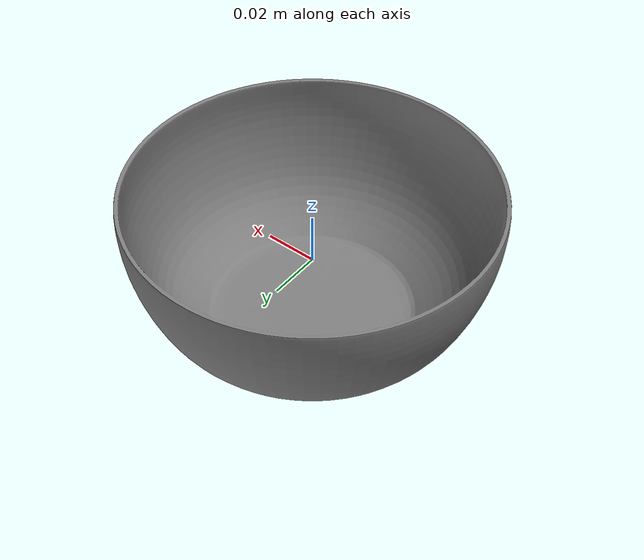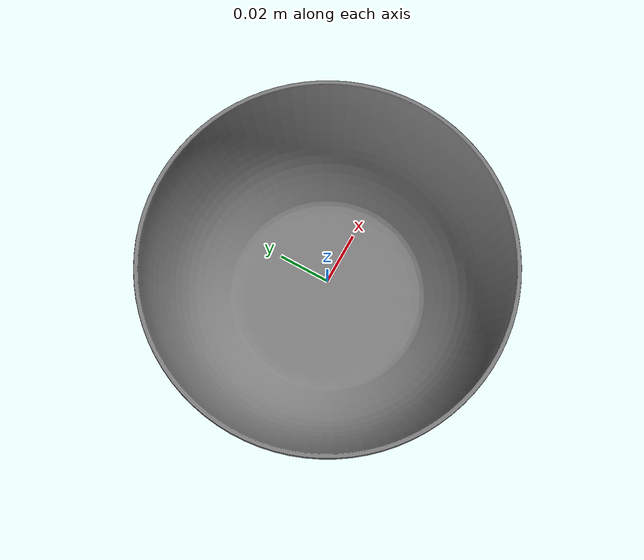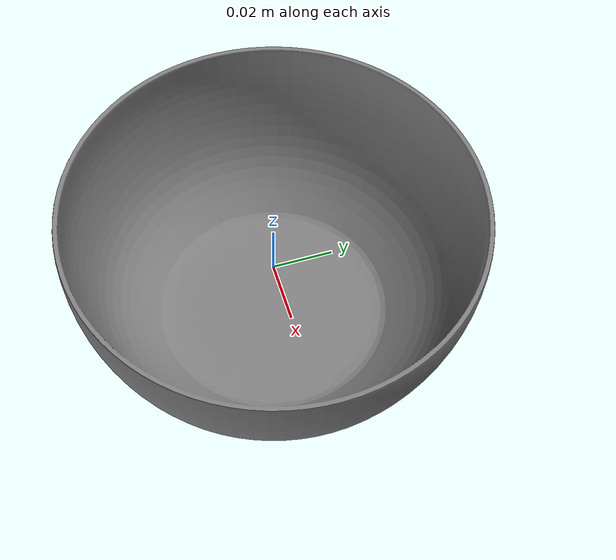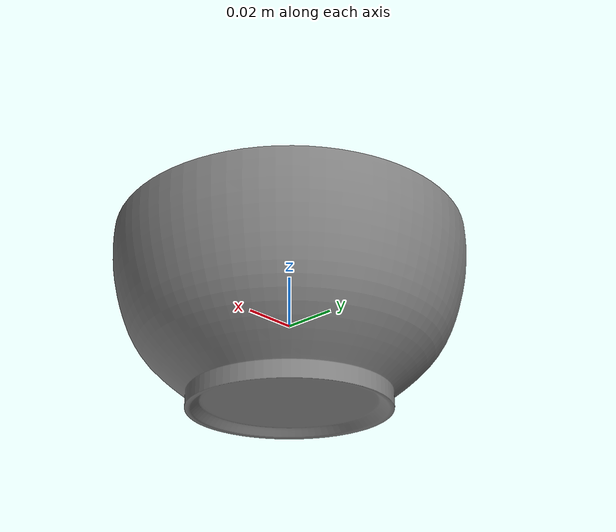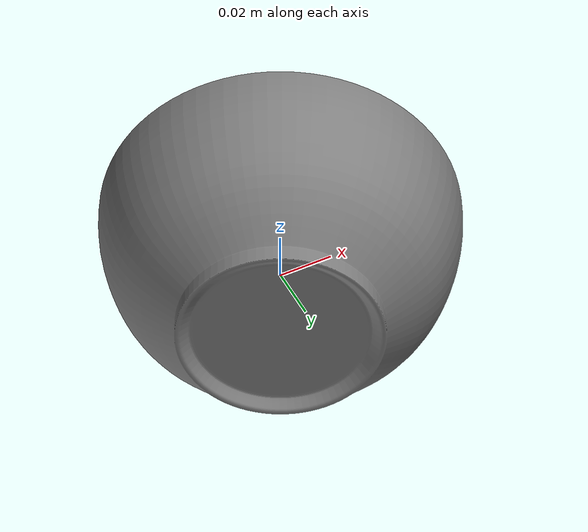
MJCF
<mujoco model="small_bowl">
    <compiler angle="radian" meshdir="../meshes/" texturedir="../meshes/textures/" autolimits="true" inertiafromgeom="true"/>
    <asset>
        <mesh name="SmallBowl" file="obj/SmallBowl.obj" />
        <mesh name="UCX_SmallBowl_001" file="stl/UCX_SmallBowl_001.stl" />
		<mesh name="UCX_SmallBowl_002" file="stl/UCX_SmallBowl_002.stl" />
		<mesh name="UCX_SmallBowl_003" file="stl/UCX_SmallBowl_003.stl" />
		<mesh name="UCX_SmallBowl_004" file="stl/UCX_SmallBowl_004.stl" />
		<mesh name="UCX_SmallBowl_005" file="stl/UCX_SmallBowl_005.stl" />
		<mesh name="UCX_SmallBowl_006" file="stl/UCX_SmallBowl_006.stl" />
		<mesh name="UCX_SmallBowl_007" file="stl/UCX_SmallBowl_007.stl" />
		<mesh name="UCX_SmallBowl_008" file="stl/UCX_SmallBowl_008.stl" />
		<mesh name="UCX_SmallBowl_009" file="stl/UCX_SmallBowl_009.stl" />
		<mesh name="UCX_SmallBowl_010" file="stl/UCX_SmallBowl_010.stl" />
		<mesh name="UCX_SmallBowl_011" file="stl/UCX_SmallBowl_011.stl" />
		<mesh name="UCX_SmallBowl_012" file="stl/UCX_SmallBowl_012.stl" />
		<mesh name="UCX_SmallBowl_013" file="stl/UCX_SmallBowl_013.stl" />
		<mesh name="UCX_SmallBowl_014" file="stl/UCX_SmallBowl_014.stl" />
		<mesh name="UCX_SmallBowl_015" file="stl/UCX_SmallBowl_015.stl" />
		<mesh name="UCX_SmallBowl_016" file="stl/UCX_SmallBowl_016.stl" />
		<mesh name="UCX_SmallBowl_017" file="stl/UCX_SmallBowl_017.stl" />
		<mesh name="UCX_SmallBowl_018" file="stl/UCX_SmallBowl_018.stl" />
		<mesh name="UCX_SmallBowl_019" file="stl/UCX_SmallBowl_019.stl" />
		<mesh name="UCX_SmallBowl_020" file="stl/UCX_SmallBowl_020.stl" />
		<mesh name="UCX_SmallBowl_021" file="stl/UCX_SmallBowl_021.stl" />
		<mesh name="UCX_SmallBowl_022" file="stl/UCX_SmallBowl_022.stl" />
		<mesh name="UCX_SmallBowl_023" file="stl/UCX_SmallBowl_023.stl" />
		<mesh name="UCX_SmallBowl_024" file="stl/UCX_SmallBowl_024.stl" />
		<mesh name="UCX_SmallBowl_025" file="stl/UCX_SmallBowl_025.stl" />
		<mesh name="UCX_SmallBowl_026" file="stl/UCX_SmallBowl_026.stl" />
		<mesh name="UCX_SmallBowl_027" file="stl/UCX_SmallBowl_027.stl" />
		<mesh name="UCX_SmallBowl_028" file="stl/UCX_SmallBowl_028.stl" />
		<mesh name="UCX_SmallBowl_029" file="stl/UCX_SmallBowl_029.stl" />
		<mesh name="UCX_SmallBowl_030" file="stl/UCX_SmallBowl_030.stl" />
		<mesh name="UCX_SmallBowl_031" file="stl/UCX_SmallBowl_031.stl" />
		<mesh name="UCX_SmallBowl_032" file="stl/UCX_SmallBowl_032.stl" />
		<mesh name="UCX_SmallBowl_033" file="stl/UCX_SmallBowl_033.stl" />
		<mesh name="UCX_SmallBowl_034" file="stl/UCX_SmallBowl_034.stl" />
		<mesh name="UCX_SmallBowl_035" file="stl/UCX_SmallBowl_035.stl" />
		<mesh name="UCX_SmallBowl_036" file="stl/UCX_SmallBowl_036.stl" />
		<mesh name="UCX_SmallBowl_037" file="stl/UCX_SmallBowl_037.stl" />
		<mesh name="UCX_SmallBowl_038" file="stl/UCX_SmallBowl_038.stl" />
		<mesh name="UCX_SmallBowl_039" file="stl/UCX_SmallBowl_039.stl" />
		<mesh name="UCX_SmallBowl_040" file="stl/UCX_SmallBowl_040.stl" />
		<mesh name="UCX_SmallBowl_041" file="stl/UCX_SmallBowl_041.stl" />
		<mesh name="UCX_SmallBowl_042" file="stl/UCX_SmallBowl_042.stl" />
		<mesh name="UCX_SmallBowl_043" file="stl/UCX_SmallBowl_043.stl" />
		<mesh name="UCX_SmallBowl_044" file="stl/UCX_SmallBowl_044.stl" />
		<mesh name="UCX_SmallBowl_045" file="stl/UCX_SmallBowl_045.stl" />
		<mesh name="UCX_SmallBowl_046" file="stl/UCX_SmallBowl_046.stl" />
		<mesh name="UCX_SmallBowl_047" file="stl/UCX_SmallBowl_047.stl" />
		<mesh name="UCX_SmallBowl_048" file="stl/UCX_SmallBowl_048.stl" />
		<mesh name="UCX_SmallBowl_049" file="stl/UCX_SmallBowl_049.stl" />
		<mesh name="UCX_SmallBowl_050" file="stl/UCX_SmallBowl_050.stl" />
		<mesh name="UCX_SmallBowl_051" file="stl/UCX_SmallBowl_051.stl" />
		<mesh name="UCX_SmallBowl_052" file="stl/UCX_SmallBowl_052.stl" />
		<mesh name="UCX_SmallBowl_053" file="stl/UCX_SmallBowl_053.stl" />
		<mesh name="UCX_SmallBowl_054" file="stl/UCX_SmallBowl_054.stl" />
		<mesh name="UCX_SmallBowl_055" file="stl/UCX_SmallBowl_055.stl" />
		<mesh name="UCX_SmallBowl_056" file="stl/UCX_SmallBowl_056.stl" />
		<mesh name="UCX_SmallBowl_057" file="stl/UCX_SmallBowl_057.stl" />
		<mesh name="UCX_SmallBowl_058" file="stl/UCX_SmallBowl_058.stl" />
		<mesh name="UCX_SmallBowl_059" file="stl/UCX_SmallBowl_059.stl" />
		<mesh name="UCX_SmallBowl_060" file="stl/UCX_SmallBowl_060.stl" />
		<mesh name="UCX_SmallBowl_061" file="stl/UCX_SmallBowl_061.stl" />
		<mesh name="UCX_SmallBowl_062" file="stl/UCX_SmallBowl_062.stl" />
		<mesh name="UCX_SmallBowl_063" file="stl/UCX_SmallBowl_063.stl" />
		<mesh name="UCX_SmallBowl_064" file="stl/UCX_SmallBowl_064.stl" />
		<mesh name="UCX_SmallBowl_065" file="stl/UCX_SmallBowl_065.stl" />
		<mesh name="UCX_SmallBowl_066" file="stl/UCX_SmallBowl_066.stl" />
		<mesh name="UCX_SmallBowl_067" file="stl/UCX_SmallBowl_067.stl" />
		<mesh name="UCX_SmallBowl_068" file="stl/UCX_SmallBowl_068.stl" />
		<mesh name="UCX_SmallBowl_069" file="stl/UCX_SmallBowl_069.stl" />
		<mesh name="UCX_SmallBowl_070" file="stl/UCX_SmallBowl_070.stl" />
		<mesh name="UCX_SmallBowl_071" file="stl/UCX_SmallBowl_071.stl" />
		<mesh name="UCX_SmallBowl_072" file="stl/UCX_SmallBowl_072.stl" />
		<mesh name="UCX_SmallBowl_073" file="stl/UCX_SmallBowl_073.stl" />
		<mesh name="UCX_SmallBowl_074" file="stl/UCX_SmallBowl_074.stl" />
		<mesh name="UCX_SmallBowl_075" file="stl/UCX_SmallBowl_075.stl" />
		<mesh name="UCX_SmallBowl_076" file="stl/UCX_SmallBowl_076.stl" />
		<mesh name="UCX_SmallBowl_077" file="stl/UCX_SmallBowl_077.stl" />
		<mesh name="UCX_SmallBowl_078" file="stl/UCX_SmallBowl_078.stl" />
		<mesh name="UCX_SmallBowl_079" file="stl/UCX_SmallBowl_079.stl" />
		<mesh name="UCX_SmallBowl_080" file="stl/UCX_SmallBowl_080.stl" />
		<mesh name="UCX_SmallBowl_081" file="stl/UCX_SmallBowl_081.stl" />
		<mesh name="UCX_SmallBowl_082" file="stl/UCX_SmallBowl_082.stl" />
		<mesh name="UCX_SmallBowl_083" file="stl/UCX_SmallBowl_083.stl" />
		<mesh name="UCX_SmallBowl_084" file="stl/UCX_SmallBowl_084.stl" />
		<mesh name="UCX_SmallBowl_085" file="stl/UCX_SmallBowl_085.stl" />
		<mesh name="UCX_SmallBowl_086" file="stl/UCX_SmallBowl_086.stl" />
		<mesh name="UCX_SmallBowl_087" file="stl/UCX_SmallBowl_087.stl" />
		<mesh name="UCX_SmallBowl_088" file="stl/UCX_SmallBowl_088.stl" />
		<mesh name="UCX_SmallBowl_089" file="stl/UCX_SmallBowl_089.stl" />
		<mesh name="UCX_SmallBowl_090" file="stl/UCX_SmallBowl_090.stl" />
		<mesh name="UCX_SmallBowl_091" file="stl/UCX_SmallBowl_091.stl" />
		<mesh name="UCX_SmallBowl_092" file="stl/UCX_SmallBowl_092.stl" />
		<mesh name="UCX_SmallBowl_093" file="stl/UCX_SmallBowl_093.stl" />
		<mesh name="UCX_SmallBowl_094" file="stl/UCX_SmallBowl_094.stl" />
		<mesh name="UCX_SmallBowl_095" file="stl/UCX_SmallBowl_095.stl" />
		<mesh name="UCX_SmallBowl_096" file="stl/UCX_SmallBowl_096.stl" />
		<mesh name="UCX_SmallBowl_097" file="stl/UCX_SmallBowl_097.stl" />
		<mesh name="UCX_SmallBowl_098" file="stl/UCX_SmallBowl_098.stl" />
		<mesh name="UCX_SmallBowl_099" file="stl/UCX_SmallBowl_099.stl" />
        <mesh name="UCX_SmallBowl_100" file="stl/UCX_SmallBowl_100.stl" />

        <mesh name="UCX_SmallBowl_101" file="stl/UCX_SmallBowl_101.stl" />
		<mesh name="UCX_SmallBowl_102" file="stl/UCX_SmallBowl_102.stl" />
		<mesh name="UCX_SmallBowl_103" file="stl/UCX_SmallBowl_103.stl" />
		<mesh name="UCX_SmallBowl_104" file="stl/UCX_SmallBowl_104.stl" />
		<mesh name="UCX_SmallBowl_105" file="stl/UCX_SmallBowl_105.stl" />
		<mesh name="UCX_SmallBowl_106" file="stl/UCX_SmallBowl_106.stl" />
		<mesh name="UCX_SmallBowl_107" file="stl/UCX_SmallBowl_107.stl" />
		<mesh name="UCX_SmallBowl_108" file="stl/UCX_SmallBowl_108.stl" />
		<mesh name="UCX_SmallBowl_109" file="stl/UCX_SmallBowl_109.stl" />
		<mesh name="UCX_SmallBowl_110" file="stl/UCX_SmallBowl_110.stl" />
		<mesh name="UCX_SmallBowl_111" file="stl/UCX_SmallBowl_111.stl" />
		<mesh name="UCX_SmallBowl_112" file="stl/UCX_SmallBowl_112.stl" />
		<mesh name="UCX_SmallBowl_113" file="stl/UCX_SmallBowl_113.stl" />
		<mesh name="UCX_SmallBowl_114" file="stl/UCX_SmallBowl_114.stl" />
		<mesh name="UCX_SmallBowl_115" file="stl/UCX_SmallBowl_115.stl" />
		<mesh name="UCX_SmallBowl_116" file="stl/UCX_SmallBowl_116.stl" />
		<mesh name="UCX_SmallBowl_117" file="stl/UCX_SmallBowl_117.stl" />
		<mesh name="UCX_SmallBowl_118" file="stl/UCX_SmallBowl_118.stl" />
		<mesh name="UCX_SmallBowl_119" file="stl/UCX_SmallBowl_119.stl" />
		<mesh name="UCX_SmallBowl_120" file="stl/UCX_SmallBowl_120.stl" />
		<mesh name="UCX_SmallBowl_121" file="stl/UCX_SmallBowl_121.stl" />
		<mesh name="UCX_SmallBowl_122" file="stl/UCX_SmallBowl_122.stl" />
		<mesh name="UCX_SmallBowl_123" file="stl/UCX_SmallBowl_123.stl" />
		<mesh name="UCX_SmallBowl_124" file="stl/UCX_SmallBowl_124.stl" />
		<mesh name="UCX_SmallBowl_125" file="stl/UCX_SmallBowl_125.stl" />
		<mesh name="UCX_SmallBowl_126" file="stl/UCX_SmallBowl_126.stl" />
		<mesh name="UCX_SmallBowl_127" file="stl/UCX_SmallBowl_127.stl" />
		<mesh name="UCX_SmallBowl_128" file="stl/UCX_SmallBowl_128.stl" />
		<mesh name="UCX_SmallBowl_129" file="stl/UCX_SmallBowl_129.stl" />
		<mesh name="UCX_SmallBowl_130" file="stl/UCX_SmallBowl_130.stl" />
		<mesh name="UCX_SmallBowl_131" file="stl/UCX_SmallBowl_131.stl" />
		<mesh name="UCX_SmallBowl_132" file="stl/UCX_SmallBowl_132.stl" />
		<mesh name="UCX_SmallBowl_133" file="stl/UCX_SmallBowl_133.stl" />
		<mesh name="UCX_SmallBowl_134" file="stl/UCX_SmallBowl_134.stl" />
		<mesh name="UCX_SmallBowl_135" file="stl/UCX_SmallBowl_135.stl" />
		<mesh name="UCX_SmallBowl_136" file="stl/UCX_SmallBowl_136.stl" />
		<mesh name="UCX_SmallBowl_137" file="stl/UCX_SmallBowl_137.stl" />
		<mesh name="UCX_SmallBowl_138" file="stl/UCX_SmallBowl_138.stl" />
		<mesh name="UCX_SmallBowl_139" file="stl/UCX_SmallBowl_139.stl" />
		<mesh name="UCX_SmallBowl_140" file="stl/UCX_SmallBowl_140.stl" />
		<mesh name="UCX_SmallBowl_141" file="stl/UCX_SmallBowl_141.stl" />
		<mesh name="UCX_SmallBowl_142" file="stl/UCX_SmallBowl_142.stl" />
		<mesh name="UCX_SmallBowl_143" file="stl/UCX_SmallBowl_143.stl" />
		<mesh name="UCX_SmallBowl_144" file="stl/UCX_SmallBowl_144.stl" />
		<mesh name="UCX_SmallBowl_145" file="stl/UCX_SmallBowl_145.stl" />
		<mesh name="UCX_SmallBowl_146" file="stl/UCX_SmallBowl_146.stl" />
		<mesh name="UCX_SmallBowl_147" file="stl/UCX_SmallBowl_147.stl" />
		<mesh name="UCX_SmallBowl_148" file="stl/UCX_SmallBowl_148.stl" />
		<mesh name="UCX_SmallBowl_149" file="stl/UCX_SmallBowl_149.stl" />
		<mesh name="UCX_SmallBowl_150" file="stl/UCX_SmallBowl_150.stl" />
		<mesh name="UCX_SmallBowl_151" file="stl/UCX_SmallBowl_151.stl" />
		<mesh name="UCX_SmallBowl_152" file="stl/UCX_SmallBowl_152.stl" />
		<mesh name="UCX_SmallBowl_153" file="stl/UCX_SmallBowl_153.stl" />
		<mesh name="UCX_SmallBowl_154" file="stl/UCX_SmallBowl_154.stl" />
		<mesh name="UCX_SmallBowl_155" file="stl/UCX_SmallBowl_155.stl" />
		<mesh name="UCX_SmallBowl_156" file="stl/UCX_SmallBowl_156.stl" />
		<mesh name="UCX_SmallBowl_157" file="stl/UCX_SmallBowl_157.stl" />
		<mesh name="UCX_SmallBowl_158" file="stl/UCX_SmallBowl_158.stl" />
		<mesh name="UCX_SmallBowl_159" file="stl/UCX_SmallBowl_159.stl" />
		<mesh name="UCX_SmallBowl_160" file="stl/UCX_SmallBowl_160.stl" />
		<mesh name="UCX_SmallBowl_161" file="stl/UCX_SmallBowl_161.stl" />
		<mesh name="UCX_SmallBowl_162" file="stl/UCX_SmallBowl_162.stl" />
		<mesh name="UCX_SmallBowl_163" file="stl/UCX_SmallBowl_163.stl" />
		<mesh name="UCX_SmallBowl_164" file="stl/UCX_SmallBowl_164.stl" />
		<mesh name="UCX_SmallBowl_165" file="stl/UCX_SmallBowl_165.stl" />
		<mesh name="UCX_SmallBowl_166" file="stl/UCX_SmallBowl_166.stl" />
		<mesh name="UCX_SmallBowl_167" file="stl/UCX_SmallBowl_167.stl" />
		<mesh name="UCX_SmallBowl_168" file="stl/UCX_SmallBowl_168.stl" />
		<mesh name="UCX_SmallBowl_169" file="stl/UCX_SmallBowl_169.stl" />
		<mesh name="UCX_SmallBowl_170" file="stl/UCX_SmallBowl_170.stl" />
		<mesh name="UCX_SmallBowl_171" file="stl/UCX_SmallBowl_171.stl" />
		<mesh name="UCX_SmallBowl_172" file="stl/UCX_SmallBowl_172.stl" />
		<mesh name="UCX_SmallBowl_173" file="stl/UCX_SmallBowl_173.stl" />
		<mesh name="UCX_SmallBowl_174" file="stl/UCX_SmallBowl_174.stl" />
		<mesh name="UCX_SmallBowl_175" file="stl/UCX_SmallBowl_175.stl" />
		<mesh name="UCX_SmallBowl_176" file="stl/UCX_SmallBowl_176.stl" />
		<mesh name="UCX_SmallBowl_177" file="stl/UCX_SmallBowl_177.stl" />
		<mesh name="UCX_SmallBowl_178" file="stl/UCX_SmallBowl_178.stl" />
		<mesh name="UCX_SmallBowl_179" file="stl/UCX_SmallBowl_179.stl" />
		<mesh name="UCX_SmallBowl_180" file="stl/UCX_SmallBowl_180.stl" />
		<mesh name="UCX_SmallBowl_181" file="stl/UCX_SmallBowl_181.stl" />
		<mesh name="UCX_SmallBowl_182" file="stl/UCX_SmallBowl_182.stl" />
		<mesh name="UCX_SmallBowl_183" file="stl/UCX_SmallBowl_183.stl" />
		<mesh name="UCX_SmallBowl_184" file="stl/UCX_SmallBowl_184.stl" />
		<mesh name="UCX_SmallBowl_185" file="stl/UCX_SmallBowl_185.stl" />
		<mesh name="UCX_SmallBowl_186" file="stl/UCX_SmallBowl_186.stl" />
		<mesh name="UCX_SmallBowl_187" file="stl/UCX_SmallBowl_187.stl" />
		<mesh name="UCX_SmallBowl_188" file="stl/UCX_SmallBowl_188.stl" />
		<mesh name="UCX_SmallBowl_189" file="stl/UCX_SmallBowl_189.stl" />
		<mesh name="UCX_SmallBowl_190" file="stl/UCX_SmallBowl_190.stl" />
		<mesh name="UCX_SmallBowl_191" file="stl/UCX_SmallBowl_191.stl" />
		<mesh name="UCX_SmallBowl_192" file="stl/UCX_SmallBowl_192.stl" />
		<mesh name="UCX_SmallBowl_193" file="stl/UCX_SmallBowl_193.stl" />
		<mesh name="UCX_SmallBowl_194" file="stl/UCX_SmallBowl_194.stl" />
		<mesh name="UCX_SmallBowl_195" file="stl/UCX_SmallBowl_195.stl" />
		<mesh name="UCX_SmallBowl_196" file="stl/UCX_SmallBowl_196.stl" />
		<mesh name="UCX_SmallBowl_197" file="stl/UCX_SmallBowl_197.stl" />
		<mesh name="UCX_SmallBowl_198" file="stl/UCX_SmallBowl_198.stl" />
		<mesh name="UCX_SmallBowl_199" file="stl/UCX_SmallBowl_199.stl" />

        <mesh name="UCX_SmallBowl_200" file="stl/UCX_SmallBowl_200.stl" />
        <mesh name="UCX_SmallBowl_201" file="stl/UCX_SmallBowl_201.stl" />
		<mesh name="UCX_SmallBowl_202" file="stl/UCX_SmallBowl_202.stl" />
		<mesh name="UCX_SmallBowl_203" file="stl/UCX_SmallBowl_203.stl" />
		<mesh name="UCX_SmallBowl_204" file="stl/UCX_SmallBowl_204.stl" />
		<mesh name="UCX_SmallBowl_205" file="stl/UCX_SmallBowl_205.stl" />
		<mesh name="UCX_SmallBowl_206" file="stl/UCX_SmallBowl_206.stl" />
		<mesh name="UCX_SmallBowl_207" file="stl/UCX_SmallBowl_207.stl" />
		<mesh name="UCX_SmallBowl_208" file="stl/UCX_SmallBowl_208.stl" />
		<mesh name="UCX_SmallBowl_209" file="stl/UCX_SmallBowl_209.stl" />
		<mesh name="UCX_SmallBowl_210" file="stl/UCX_SmallBowl_210.stl" />
		<mesh name="UCX_SmallBowl_211" file="stl/UCX_SmallBowl_211.stl" />
		<mesh name="UCX_SmallBowl_212" file="stl/UCX_SmallBowl_212.stl" />
		<mesh name="UCX_SmallBowl_213" file="stl/UCX_SmallBowl_213.stl" />
		<mesh name="UCX_SmallBowl_214" file="stl/UCX_SmallBowl_214.stl" />
		<mesh name="UCX_SmallBowl_215" file="stl/UCX_SmallBowl_215.stl" />
		<mesh name="UCX_SmallBowl_216" file="stl/UCX_SmallBowl_216.stl" />
		<mesh name="UCX_SmallBowl_217" file="stl/UCX_SmallBowl_217.stl" />
		<mesh name="UCX_SmallBowl_218" file="stl/UCX_SmallBowl_218.stl" />
		<mesh name="UCX_SmallBowl_219" file="stl/UCX_SmallBowl_219.stl" />
		<mesh name="UCX_SmallBowl_220" file="stl/UCX_SmallBowl_220.stl" />
		<mesh name="UCX_SmallBowl_221" file="stl/UCX_SmallBowl_221.stl" />
		<mesh name="UCX_SmallBowl_222" file="stl/UCX_SmallBowl_222.stl" />
		<mesh name="UCX_SmallBowl_223" file="stl/UCX_SmallBowl_223.stl" />
		<mesh name="UCX_SmallBowl_224" file="stl/UCX_SmallBowl_224.stl" />
		<mesh name="UCX_SmallBowl_225" file="stl/UCX_SmallBowl_225.stl" />
        <mesh name="UCX_SmallBowl_226" file="stl/UCX_SmallBowl_226.stl" />
    </asset>
    <default>
        <default class="small_bowl_visual">
            <geom contype="0" conaffinity="0" />
        </default>
        <default class="small_bowl_collision">
            <geom rgba="0.0 0.0 0.0 0.0" />
        </default>
    </default>
    <worldbody>
        <body name="small_bowl">
            <freejoint />
            <inertial mass="0.05838299170136452" pos="1.5258869723311363e-08 -2.7080032438675516e-08 -0.006071913987398148" diaginertia="0.00010565296543063596 0.00010565326374489814 0.0001514565374236554"/>
            <geom name="SmallBowl" pos="0.0 0.0 0.0" quat="1.0 0.0 0.0 0.0" type="mesh" mesh="SmallBowl" class="small_bowl_visual" />
            <geom name="UCX_SmallBowl_001" type="mesh" pos="0.0 0.0 0.0" quat="1.0 0.0 0.0 0.0" mesh="UCX_SmallBowl_001" class="small_bowl_collision"/>
            <geom name="UCX_SmallBowl_002" type="mesh" pos="0.0 0.0 0.0" quat="1.0 0.0 0.0 0.0" mesh="UCX_SmallBowl_002" class="small_bowl_collision"/>
            <geom name="UCX_SmallBowl_003" type="mesh" pos="0.0 0.0 0.0" quat="1.0 0.0 0.0 0.0" mesh="UCX_SmallBowl_003" class="small_bowl_collision"/>
            <geom name="UCX_SmallBowl_004" type="mesh" pos="0.0 0.0 0.0" quat="1.0 0.0 0.0 0.0" mesh="UCX_SmallBowl_004" class="small_bowl_collision"/>
            <geom name="UCX_SmallBowl_005" type="mesh" pos="0.0 0.0 0.0" quat="1.0 0.0 0.0 0.0" mesh="UCX_SmallBowl_005" class="small_bowl_collision"/>
            <geom name="UCX_SmallBowl_006" type="mesh" pos="0.0 0.0 0.0" quat="1.0 0.0 0.0 0.0" mesh="UCX_SmallBowl_006" class="small_bowl_collision"/>
            <geom name="UCX_SmallBowl_007" type="mesh" pos="0.0 0.0 0.0" quat="1.0 0.0 0.0 0.0" mesh="UCX_SmallBowl_007" class="small_bowl_collision"/>
            <geom name="UCX_SmallBowl_008" type="mesh" pos="0.0 0.0 0.0" quat="1.0 0.0 0.0 0.0" mesh="UCX_SmallBowl_008" class="small_bowl_collision"/>
            <geom name="UCX_SmallBowl_009" type="mesh" pos="0.0 0.0 0.0" quat="1.0 0.0 0.0 0.0" mesh="UCX_SmallBowl_009" class="small_bowl_collision"/>
            <geom name="UCX_SmallBowl_010" type="mesh" pos="0.0 0.0 0.0" quat="1.0 0.0 0.0 0.0" mesh="UCX_SmallBowl_010" class="small_bowl_collision"/>
            <geom name="UCX_SmallBowl_011" type="mesh" pos="0.0 0.0 0.0" quat="1.0 0.0 0.0 0.0" mesh="UCX_SmallBowl_011" class="small_bowl_collision"/>
            <geom name="UCX_SmallBowl_012" type="mesh" pos="0.0 0.0 0.0" quat="1.0 0.0 0.0 0.0" mesh="UCX_SmallBowl_012" class="small_bowl_collision"/>
            <geom name="UCX_SmallBowl_013" type="mesh" pos="0.0 0.0 0.0" quat="1.0 0.0 0.0 0.0" mesh="UCX_SmallBowl_013" class="small_bowl_collision"/>
            <geom name="UCX_SmallBowl_014" type="mesh" pos="0.0 0.0 0.0" quat="1.0 0.0 0.0 0.0" mesh="UCX_SmallBowl_014" class="small_bowl_collision"/>
            <geom name="UCX_SmallBowl_015" type="mesh" pos="0.0 0.0 0.0" quat="1.0 0.0 0.0 0.0" mesh="UCX_SmallBowl_015" class="small_bowl_collision"/>
            <geom name="UCX_SmallBowl_016" type="mesh" pos="0.0 0.0 0.0" quat="1.0 0.0 0.0 0.0" mesh="UCX_SmallBowl_016" class="small_bowl_collision"/>
            <geom name="UCX_SmallBowl_017" type="mesh" pos="0.0 0.0 0.0" quat="1.0 0.0 0.0 0.0" mesh="UCX_SmallBowl_017" class="small_bowl_collision"/>
            <geom name="UCX_SmallBowl_018" type="mesh" pos="0.0 0.0 0.0" quat="1.0 0.0 0.0 0.0" mesh="UCX_SmallBowl_018" class="small_bowl_collision"/>
            <geom name="UCX_SmallBowl_019" type="mesh" pos="0.0 0.0 0.0" quat="1.0 0.0 0.0 0.0" mesh="UCX_SmallBowl_019" class="small_bowl_collision"/>
            <geom name="UCX_SmallBowl_020" type="mesh" pos="0.0 0.0 0.0" quat="1.0 0.0 0.0 0.0" mesh="UCX_SmallBowl_020" class="small_bowl_collision"/>
            <geom name="UCX_SmallBowl_021" type="mesh" pos="0.0 0.0 0.0" quat="1.0 0.0 0.0 0.0" mesh="UCX_SmallBowl_021" class="small_bowl_collision"/>
            <geom name="UCX_SmallBowl_022" type="mesh" pos="0.0 0.0 0.0" quat="1.0 0.0 0.0 0.0" mesh="UCX_SmallBowl_022" class="small_bowl_collision"/>
            <geom name="UCX_SmallBowl_023" type="mesh" pos="0.0 0.0 0.0" quat="1.0 0.0 0.0 0.0" mesh="UCX_SmallBowl_023" class="small_bowl_collision"/>
            <geom name="UCX_SmallBowl_024" type="mesh" pos="0.0 0.0 0.0" quat="1.0 0.0 0.0 0.0" mesh="UCX_SmallBowl_024" class="small_bowl_collision"/>
            <geom name="UCX_SmallBowl_025" type="mesh" pos="0.0 0.0 0.0" quat="1.0 0.0 0.0 0.0" mesh="UCX_SmallBowl_025" class="small_bowl_collision"/>
            <geom name="UCX_SmallBowl_026" type="mesh" pos="0.0 0.0 0.0" quat="1.0 0.0 0.0 0.0" mesh="UCX_SmallBowl_026" class="small_bowl_collision"/>
            <geom name="UCX_SmallBowl_027" type="mesh" pos="0.0 0.0 0.0" quat="1.0 0.0 0.0 0.0" mesh="UCX_SmallBowl_027" class="small_bowl_collision"/>
            <geom name="UCX_SmallBowl_028" type="mesh" pos="0.0 0.0 0.0" quat="1.0 0.0 0.0 0.0" mesh="UCX_SmallBowl_028" class="small_bowl_collision"/>
            <geom name="UCX_SmallBowl_029" type="mesh" pos="0.0 0.0 0.0" quat="1.0 0.0 0.0 0.0" mesh="UCX_SmallBowl_029" class="small_bowl_collision"/>
            <geom name="UCX_SmallBowl_030" type="mesh" pos="0.0 0.0 0.0" quat="1.0 0.0 0.0 0.0" mesh="UCX_SmallBowl_030" class="small_bowl_collision"/>
            <geom name="UCX_SmallBowl_031" type="mesh" pos="0.0 0.0 0.0" quat="1.0 0.0 0.0 0.0" mesh="UCX_SmallBowl_031" class="small_bowl_collision"/>
            <geom name="UCX_SmallBowl_032" type="mesh" pos="0.0 0.0 0.0" quat="1.0 0.0 0.0 0.0" mesh="UCX_SmallBowl_032" class="small_bowl_collision"/>
            <geom name="UCX_SmallBowl_033" type="mesh" pos="0.0 0.0 0.0" quat="1.0 0.0 0.0 0.0" mesh="UCX_SmallBowl_033" class="small_bowl_collision"/>
            <geom name="UCX_SmallBowl_034" type="mesh" pos="0.0 0.0 0.0" quat="1.0 0.0 0.0 0.0" mesh="UCX_SmallBowl_034" class="small_bowl_collision"/>
            <geom name="UCX_SmallBowl_035" type="mesh" pos="0.0 0.0 0.0" quat="1.0 0.0 0.0 0.0" mesh="UCX_SmallBowl_035" class="small_bowl_collision"/>
            <geom name="UCX_SmallBowl_036" type="mesh" pos="0.0 0.0 0.0" quat="1.0 0.0 0.0 0.0" mesh="UCX_SmallBowl_036" class="small_bowl_collision"/>
            <geom name="UCX_SmallBowl_037" type="mesh" pos="0.0 0.0 0.0" quat="1.0 0.0 0.0 0.0" mesh="UCX_SmallBowl_037" class="small_bowl_collision"/>
            <geom name="UCX_SmallBowl_038" type="mesh" pos="0.0 0.0 0.0" quat="1.0 0.0 0.0 0.0" mesh="UCX_SmallBowl_038" class="small_bowl_collision"/>
            <geom name="UCX_SmallBowl_039" type="mesh" pos="0.0 0.0 0.0" quat="1.0 0.0 0.0 0.0" mesh="UCX_SmallBowl_039" class="small_bowl_collision"/>
            <geom name="UCX_SmallBowl_040" type="mesh" pos="0.0 0.0 0.0" quat="1.0 0.0 0.0 0.0" mesh="UCX_SmallBowl_040" class="small_bowl_collision"/>
            <geom name="UCX_SmallBowl_041" type="mesh" pos="0.0 0.0 0.0" quat="1.0 0.0 0.0 0.0" mesh="UCX_SmallBowl_041" class="small_bowl_collision"/>
            <geom name="UCX_SmallBowl_042" type="mesh" pos="0.0 0.0 0.0" quat="1.0 0.0 0.0 0.0" mesh="UCX_SmallBowl_042" class="small_bowl_collision"/>
            <geom name="UCX_SmallBowl_043" type="mesh" pos="0.0 0.0 0.0" quat="1.0 0.0 0.0 0.0" mesh="UCX_SmallBowl_043" class="small_bowl_collision"/>
            <geom name="UCX_SmallBowl_044" type="mesh" pos="0.0 0.0 0.0" quat="1.0 0.0 0.0 0.0" mesh="UCX_SmallBowl_044" class="small_bowl_collision"/>
            <geom name="UCX_SmallBowl_045" type="mesh" pos="0.0 0.0 0.0" quat="1.0 0.0 0.0 0.0" mesh="UCX_SmallBowl_045" class="small_bowl_collision"/>
            <geom name="UCX_SmallBowl_046" type="mesh" pos="0.0 0.0 0.0" quat="1.0 0.0 0.0 0.0" mesh="UCX_SmallBowl_046" class="small_bowl_collision"/>
            <geom name="UCX_SmallBowl_047" type="mesh" pos="0.0 0.0 0.0" quat="1.0 0.0 0.0 0.0" mesh="UCX_SmallBowl_047" class="small_bowl_collision"/>
            <geom name="UCX_SmallBowl_048" type="mesh" pos="0.0 0.0 0.0" quat="1.0 0.0 0.0 0.0" mesh="UCX_SmallBowl_048" class="small_bowl_collision"/>
            <geom name="UCX_SmallBowl_049" type="mesh" pos="0.0 0.0 0.0" quat="1.0 0.0 0.0 0.0" mesh="UCX_SmallBowl_049" class="small_bowl_collision"/>
            <geom name="UCX_SmallBowl_050" type="mesh" pos="0.0 0.0 0.0" quat="1.0 0.0 0.0 0.0" mesh="UCX_SmallBowl_050" class="small_bowl_collision"/>
            <geom name="UCX_SmallBowl_051" type="mesh" pos="0.0 0.0 0.0" quat="1.0 0.0 0.0 0.0" mesh="UCX_SmallBowl_051" class="small_bowl_collision"/>
            <geom name="UCX_SmallBowl_052" type="mesh" pos="0.0 0.0 0.0" quat="1.0 0.0 0.0 0.0" mesh="UCX_SmallBowl_052" class="small_bowl_collision"/>
            <geom name="UCX_SmallBowl_053" type="mesh" pos="0.0 0.0 0.0" quat="1.0 0.0 0.0 0.0" mesh="UCX_SmallBowl_053" class="small_bowl_collision"/>
            <geom name="UCX_SmallBowl_054" type="mesh" pos="0.0 0.0 0.0" quat="1.0 0.0 0.0 0.0" mesh="UCX_SmallBowl_054" class="small_bowl_collision"/>
            <geom name="UCX_SmallBowl_055" type="mesh" pos="0.0 0.0 0.0" quat="1.0 0.0 0.0 0.0" mesh="UCX_SmallBowl_055" class="small_bowl_collision"/>
            <geom name="UCX_SmallBowl_056" type="mesh" pos="0.0 0.0 0.0" quat="1.0 0.0 0.0 0.0" mesh="UCX_SmallBowl_056" class="small_bowl_collision"/>
            <geom name="UCX_SmallBowl_057" type="mesh" pos="0.0 0.0 0.0" quat="1.0 0.0 0.0 0.0" mesh="UCX_SmallBowl_057" class="small_bowl_collision"/>
            <geom name="UCX_SmallBowl_058" type="mesh" pos="0.0 0.0 0.0" quat="1.0 0.0 0.0 0.0" mesh="UCX_SmallBowl_058" class="small_bowl_collision"/>
            <geom name="UCX_SmallBowl_059" type="mesh" pos="0.0 0.0 0.0" quat="1.0 0.0 0.0 0.0" mesh="UCX_SmallBowl_059" class="small_bowl_collision"/>
            <geom name="UCX_SmallBowl_060" type="mesh" pos="0.0 0.0 0.0" quat="1.0 0.0 0.0 0.0" mesh="UCX_SmallBowl_060" class="small_bowl_collision"/>
            <geom name="UCX_SmallBowl_061" type="mesh" pos="0.0 0.0 0.0" quat="1.0 0.0 0.0 0.0" mesh="UCX_SmallBowl_061" class="small_bowl_collision"/>
            <geom name="UCX_SmallBowl_062" type="mesh" pos="0.0 0.0 0.0" quat="1.0 0.0 0.0 0.0" mesh="UCX_SmallBowl_062" class="small_bowl_collision"/>
            <geom name="UCX_SmallBowl_063" type="mesh" pos="0.0 0.0 0.0" quat="1.0 0.0 0.0 0.0" mesh="UCX_SmallBowl_063" class="small_bowl_collision"/>
            <geom name="UCX_SmallBowl_064" type="mesh" pos="0.0 0.0 0.0" quat="1.0 0.0 0.0 0.0" mesh="UCX_SmallBowl_064" class="small_bowl_collision"/>
            <geom name="UCX_SmallBowl_065" type="mesh" pos="0.0 0.0 0.0" quat="1.0 0.0 0.0 0.0" mesh="UCX_SmallBowl_065" class="small_bowl_collision"/>
            <geom name="UCX_SmallBowl_066" type="mesh" pos="0.0 0.0 0.0" quat="1.0 0.0 0.0 0.0" mesh="UCX_SmallBowl_066" class="small_bowl_collision"/>
            <geom name="UCX_SmallBowl_067" type="mesh" pos="0.0 0.0 0.0" quat="1.0 0.0 0.0 0.0" mesh="UCX_SmallBowl_067" class="small_bowl_collision"/>
            <geom name="UCX_SmallBowl_068" type="mesh" pos="0.0 0.0 0.0" quat="1.0 0.0 0.0 0.0" mesh="UCX_SmallBowl_068" class="small_bowl_collision"/>
            <geom name="UCX_SmallBowl_069" type="mesh" pos="0.0 0.0 0.0" quat="1.0 0.0 0.0 0.0" mesh="UCX_SmallBowl_069" class="small_bowl_collision"/>
            <geom name="UCX_SmallBowl_070" type="mesh" pos="0.0 0.0 0.0" quat="1.0 0.0 0.0 0.0" mesh="UCX_SmallBowl_070" class="small_bowl_collision"/>
            <geom name="UCX_SmallBowl_071" type="mesh" pos="0.0 0.0 0.0" quat="1.0 0.0 0.0 0.0" mesh="UCX_SmallBowl_071" class="small_bowl_collision"/>
            <geom name="UCX_SmallBowl_072" type="mesh" pos="0.0 0.0 0.0" quat="1.0 0.0 0.0 0.0" mesh="UCX_SmallBowl_072" class="small_bowl_collision"/>
            <geom name="UCX_SmallBowl_073" type="mesh" pos="0.0 0.0 0.0" quat="1.0 0.0 0.0 0.0" mesh="UCX_SmallBowl_073" class="small_bowl_collision"/>
            <geom name="UCX_SmallBowl_074" type="mesh" pos="0.0 0.0 0.0" quat="1.0 0.0 0.0 0.0" mesh="UCX_SmallBowl_074" class="small_bowl_collision"/>
            <geom name="UCX_SmallBowl_075" type="mesh" pos="0.0 0.0 0.0" quat="1.0 0.0 0.0 0.0" mesh="UCX_SmallBowl_075" class="small_bowl_collision"/>
            <geom name="UCX_SmallBowl_076" type="mesh" pos="0.0 0.0 0.0" quat="1.0 0.0 0.0 0.0" mesh="UCX_SmallBowl_076" class="small_bowl_collision"/>
            <geom name="UCX_SmallBowl_077" type="mesh" pos="0.0 0.0 0.0" quat="1.0 0.0 0.0 0.0" mesh="UCX_SmallBowl_077" class="small_bowl_collision"/>
            <geom name="UCX_SmallBowl_078" type="mesh" pos="0.0 0.0 0.0" quat="1.0 0.0 0.0 0.0" mesh="UCX_SmallBowl_078" class="small_bowl_collision"/>
            <geom name="UCX_SmallBowl_079" type="mesh" pos="0.0 0.0 0.0" quat="1.0 0.0 0.0 0.0" mesh="UCX_SmallBowl_079" class="small_bowl_collision"/>
            <geom name="UCX_SmallBowl_080" type="mesh" pos="0.0 0.0 0.0" quat="1.0 0.0 0.0 0.0" mesh="UCX_SmallBowl_080" class="small_bowl_collision"/>
            <geom name="UCX_SmallBowl_081" type="mesh" pos="0.0 0.0 0.0" quat="1.0 0.0 0.0 0.0" mesh="UCX_SmallBowl_081" class="small_bowl_collision"/>
            <geom name="UCX_SmallBowl_082" type="mesh" pos="0.0 0.0 0.0" quat="1.0 0.0 0.0 0.0" mesh="UCX_SmallBowl_082" class="small_bowl_collision"/>
            <geom name="UCX_SmallBowl_083" type="mesh" pos="0.0 0.0 0.0" quat="1.0 0.0 0.0 0.0" mesh="UCX_SmallBowl_083" class="small_bowl_collision"/>
            <geom name="UCX_SmallBowl_084" type="mesh" pos="0.0 0.0 0.0" quat="1.0 0.0 0.0 0.0" mesh="UCX_SmallBowl_084" class="small_bowl_collision"/>
            <geom name="UCX_SmallBowl_085" type="mesh" pos="0.0 0.0 0.0" quat="1.0 0.0 0.0 0.0" mesh="UCX_SmallBowl_085" class="small_bowl_collision"/>
            <geom name="UCX_SmallBowl_086" type="mesh" pos="0.0 0.0 0.0" quat="1.0 0.0 0.0 0.0" mesh="UCX_SmallBowl_086" class="small_bowl_collision"/>
            <geom name="UCX_SmallBowl_087" type="mesh" pos="0.0 0.0 0.0" quat="1.0 0.0 0.0 0.0" mesh="UCX_SmallBowl_087" class="small_bowl_collision"/>
            <geom name="UCX_SmallBowl_088" type="mesh" pos="0.0 0.0 0.0" quat="1.0 0.0 0.0 0.0" mesh="UCX_SmallBowl_088" class="small_bowl_collision"/>
            <geom name="UCX_SmallBowl_089" type="mesh" pos="0.0 0.0 0.0" quat="1.0 0.0 0.0 0.0" mesh="UCX_SmallBowl_089" class="small_bowl_collision"/>
            <geom name="UCX_SmallBowl_090" type="mesh" pos="0.0 0.0 0.0" quat="1.0 0.0 0.0 0.0" mesh="UCX_SmallBowl_090" class="small_bowl_collision"/>
            <geom name="UCX_SmallBowl_091" type="mesh" pos="0.0 0.0 0.0" quat="1.0 0.0 0.0 0.0" mesh="UCX_SmallBowl_091" class="small_bowl_collision"/>
            <geom name="UCX_SmallBowl_092" type="mesh" pos="0.0 0.0 0.0" quat="1.0 0.0 0.0 0.0" mesh="UCX_SmallBowl_092" class="small_bowl_collision"/>
            <geom name="UCX_SmallBowl_093" type="mesh" pos="0.0 0.0 0.0" quat="1.0 0.0 0.0 0.0" mesh="UCX_SmallBowl_093" class="small_bowl_collision"/>
            <geom name="UCX_SmallBowl_094" type="mesh" pos="0.0 0.0 0.0" quat="1.0 0.0 0.0 0.0" mesh="UCX_SmallBowl_094" class="small_bowl_collision"/>
            <geom name="UCX_SmallBowl_095" type="mesh" pos="0.0 0.0 0.0" quat="1.0 0.0 0.0 0.0" mesh="UCX_SmallBowl_095" class="small_bowl_collision"/>
            <geom name="UCX_SmallBowl_096" type="mesh" pos="0.0 0.0 0.0" quat="1.0 0.0 0.0 0.0" mesh="UCX_SmallBowl_096" class="small_bowl_collision"/>
            <geom name="UCX_SmallBowl_097" type="mesh" pos="0.0 0.0 0.0" quat="1.0 0.0 0.0 0.0" mesh="UCX_SmallBowl_097" class="small_bowl_collision"/>
            <geom name="UCX_SmallBowl_098" type="mesh" pos="0.0 0.0 0.0" quat="1.0 0.0 0.0 0.0" mesh="UCX_SmallBowl_098" class="small_bowl_collision"/>
            <geom name="UCX_SmallBowl_099" type="mesh" pos="0.0 0.0 0.0" quat="1.0 0.0 0.0 0.0" mesh="UCX_SmallBowl_099" class="small_bowl_collision"/>
            <geom name="UCX_SmallBowl_100" type="mesh" pos="0.0 0.0 0.0" quat="1.0 0.0 0.0 0.0" mesh="UCX_SmallBowl_100" class="small_bowl_collision"/>

            <geom name="UCX_SmallBowl_101" type="mesh" pos="0.0 0.0 0.0" quat="1.0 0.0 0.0 0.0" mesh="UCX_SmallBowl_101" class="small_bowl_collision"/>
            <geom name="UCX_SmallBowl_102" type="mesh" pos="0.0 0.0 0.0" quat="1.0 0.0 0.0 0.0" mesh="UCX_SmallBowl_102" class="small_bowl_collision"/>
            <geom name="UCX_SmallBowl_103" type="mesh" pos="0.0 0.0 0.0" quat="1.0 0.0 0.0 0.0" mesh="UCX_SmallBowl_103" class="small_bowl_collision"/>
            <geom name="UCX_SmallBowl_104" type="mesh" pos="0.0 0.0 0.0" quat="1.0 0.0 0.0 0.0" mesh="UCX_SmallBowl_104" class="small_bowl_collision"/>
            <geom name="UCX_SmallBowl_105" type="mesh" pos="0.0 0.0 0.0" quat="1.0 0.0 0.0 0.0" mesh="UCX_SmallBowl_105" class="small_bowl_collision"/>
            <geom name="UCX_SmallBowl_106" type="mesh" pos="0.0 0.0 0.0" quat="1.0 0.0 0.0 0.0" mesh="UCX_SmallBowl_106" class="small_bowl_collision"/>
            <geom name="UCX_SmallBowl_107" type="mesh" pos="0.0 0.0 0.0" quat="1.0 0.0 0.0 0.0" mesh="UCX_SmallBowl_107" class="small_bowl_collision"/>
            <geom name="UCX_SmallBowl_108" type="mesh" pos="0.0 0.0 0.0" quat="1.0 0.0 0.0 0.0" mesh="UCX_SmallBowl_108" class="small_bowl_collision"/>
            <geom name="UCX_SmallBowl_109" type="mesh" pos="0.0 0.0 0.0" quat="1.0 0.0 0.0 0.0" mesh="UCX_SmallBowl_109" class="small_bowl_collision"/>
            <geom name="UCX_SmallBowl_110" type="mesh" pos="0.0 0.0 0.0" quat="1.0 0.0 0.0 0.0" mesh="UCX_SmallBowl_110" class="small_bowl_collision"/>
            <geom name="UCX_SmallBowl_111" type="mesh" pos="0.0 0.0 0.0" quat="1.0 0.0 0.0 0.0" mesh="UCX_SmallBowl_111" class="small_bowl_collision"/>
            <geom name="UCX_SmallBowl_112" type="mesh" pos="0.0 0.0 0.0" quat="1.0 0.0 0.0 0.0" mesh="UCX_SmallBowl_112" class="small_bowl_collision"/>
            <geom name="UCX_SmallBowl_113" type="mesh" pos="0.0 0.0 0.0" quat="1.0 0.0 0.0 0.0" mesh="UCX_SmallBowl_113" class="small_bowl_collision"/>
            <geom name="UCX_SmallBowl_114" type="mesh" pos="0.0 0.0 0.0" quat="1.0 0.0 0.0 0.0" mesh="UCX_SmallBowl_114" class="small_bowl_collision"/>
            <geom name="UCX_SmallBowl_115" type="mesh" pos="0.0 0.0 0.0" quat="1.0 0.0 0.0 0.0" mesh="UCX_SmallBowl_115" class="small_bowl_collision"/>
            <geom name="UCX_SmallBowl_116" type="mesh" pos="0.0 0.0 0.0" quat="1.0 0.0 0.0 0.0" mesh="UCX_SmallBowl_116" class="small_bowl_collision"/>
            <geom name="UCX_SmallBowl_117" type="mesh" pos="0.0 0.0 0.0" quat="1.0 0.0 0.0 0.0" mesh="UCX_SmallBowl_117" class="small_bowl_collision"/>
            <geom name="UCX_SmallBowl_118" type="mesh" pos="0.0 0.0 0.0" quat="1.0 0.0 0.0 0.0" mesh="UCX_SmallBowl_118" class="small_bowl_collision"/>
            <geom name="UCX_SmallBowl_119" type="mesh" pos="0.0 0.0 0.0" quat="1.0 0.0 0.0 0.0" mesh="UCX_SmallBowl_119" class="small_bowl_collision"/>
            <geom name="UCX_SmallBowl_120" type="mesh" pos="0.0 0.0 0.0" quat="1.0 0.0 0.0 0.0" mesh="UCX_SmallBowl_120" class="small_bowl_collision"/>
            <geom name="UCX_SmallBowl_121" type="mesh" pos="0.0 0.0 0.0" quat="1.0 0.0 0.0 0.0" mesh="UCX_SmallBowl_121" class="small_bowl_collision"/>
            <geom name="UCX_SmallBowl_122" type="mesh" pos="0.0 0.0 0.0" quat="1.0 0.0 0.0 0.0" mesh="UCX_SmallBowl_122" class="small_bowl_collision"/>
            <geom name="UCX_SmallBowl_123" type="mesh" pos="0.0 0.0 0.0" quat="1.0 0.0 0.0 0.0" mesh="UCX_SmallBowl_123" class="small_bowl_collision"/>
            <geom name="UCX_SmallBowl_124" type="mesh" pos="0.0 0.0 0.0" quat="1.0 0.0 0.0 0.0" mesh="UCX_SmallBowl_124" class="small_bowl_collision"/>
            <geom name="UCX_SmallBowl_125" type="mesh" pos="0.0 0.0 0.0" quat="1.0 0.0 0.0 0.0" mesh="UCX_SmallBowl_125" class="small_bowl_collision"/>
            <geom name="UCX_SmallBowl_126" type="mesh" pos="0.0 0.0 0.0" quat="1.0 0.0 0.0 0.0" mesh="UCX_SmallBowl_126" class="small_bowl_collision"/>
            <geom name="UCX_SmallBowl_127" type="mesh" pos="0.0 0.0 0.0" quat="1.0 0.0 0.0 0.0" mesh="UCX_SmallBowl_127" class="small_bowl_collision"/>
            <geom name="UCX_SmallBowl_128" type="mesh" pos="0.0 0.0 0.0" quat="1.0 0.0 0.0 0.0" mesh="UCX_SmallBowl_128" class="small_bowl_collision"/>
            <geom name="UCX_SmallBowl_129" type="mesh" pos="0.0 0.0 0.0" quat="1.0 0.0 0.0 0.0" mesh="UCX_SmallBowl_129" class="small_bowl_collision"/>
            <geom name="UCX_SmallBowl_130" type="mesh" pos="0.0 0.0 0.0" quat="1.0 0.0 0.0 0.0" mesh="UCX_SmallBowl_130" class="small_bowl_collision"/>
            <geom name="UCX_SmallBowl_131" type="mesh" pos="0.0 0.0 0.0" quat="1.0 0.0 0.0 0.0" mesh="UCX_SmallBowl_131" class="small_bowl_collision"/>
            <geom name="UCX_SmallBowl_132" type="mesh" pos="0.0 0.0 0.0" quat="1.0 0.0 0.0 0.0" mesh="UCX_SmallBowl_132" class="small_bowl_collision"/>
            <geom name="UCX_SmallBowl_133" type="mesh" pos="0.0 0.0 0.0" quat="1.0 0.0 0.0 0.0" mesh="UCX_SmallBowl_133" class="small_bowl_collision"/>
            <geom name="UCX_SmallBowl_134" type="mesh" pos="0.0 0.0 0.0" quat="1.0 0.0 0.0 0.0" mesh="UCX_SmallBowl_134" class="small_bowl_collision"/>
            <geom name="UCX_SmallBowl_135" type="mesh" pos="0.0 0.0 0.0" quat="1.0 0.0 0.0 0.0" mesh="UCX_SmallBowl_135" class="small_bowl_collision"/>
            <geom name="UCX_SmallBowl_136" type="mesh" pos="0.0 0.0 0.0" quat="1.0 0.0 0.0 0.0" mesh="UCX_SmallBowl_136" class="small_bowl_collision"/>
            <geom name="UCX_SmallBowl_137" type="mesh" pos="0.0 0.0 0.0" quat="1.0 0.0 0.0 0.0" mesh="UCX_SmallBowl_137" class="small_bowl_collision"/>
            <geom name="UCX_SmallBowl_138" type="mesh" pos="0.0 0.0 0.0" quat="1.0 0.0 0.0 0.0" mesh="UCX_SmallBowl_138" class="small_bowl_collision"/>
            <geom name="UCX_SmallBowl_139" type="mesh" pos="0.0 0.0 0.0" quat="1.0 0.0 0.0 0.0" mesh="UCX_SmallBowl_139" class="small_bowl_collision"/>
            <geom name="UCX_SmallBowl_140" type="mesh" pos="0.0 0.0 0.0" quat="1.0 0.0 0.0 0.0" mesh="UCX_SmallBowl_140" class="small_bowl_collision"/>
            <geom name="UCX_SmallBowl_141" type="mesh" pos="0.0 0.0 0.0" quat="1.0 0.0 0.0 0.0" mesh="UCX_SmallBowl_141" class="small_bowl_collision"/>
            <geom name="UCX_SmallBowl_142" type="mesh" pos="0.0 0.0 0.0" quat="1.0 0.0 0.0 0.0" mesh="UCX_SmallBowl_142" class="small_bowl_collision"/>
            <geom name="UCX_SmallBowl_143" type="mesh" pos="0.0 0.0 0.0" quat="1.0 0.0 0.0 0.0" mesh="UCX_SmallBowl_143" class="small_bowl_collision"/>
            <geom name="UCX_SmallBowl_144" type="mesh" pos="0.0 0.0 0.0" quat="1.0 0.0 0.0 0.0" mesh="UCX_SmallBowl_144" class="small_bowl_collision"/>
            <geom name="UCX_SmallBowl_145" type="mesh" pos="0.0 0.0 0.0" quat="1.0 0.0 0.0 0.0" mesh="UCX_SmallBowl_145" class="small_bowl_collision"/>
            <geom name="UCX_SmallBowl_146" type="mesh" pos="0.0 0.0 0.0" quat="1.0 0.0 0.0 0.0" mesh="UCX_SmallBowl_146" class="small_bowl_collision"/>
            <geom name="UCX_SmallBowl_147" type="mesh" pos="0.0 0.0 0.0" quat="1.0 0.0 0.0 0.0" mesh="UCX_SmallBowl_147" class="small_bowl_collision"/>
            <geom name="UCX_SmallBowl_148" type="mesh" pos="0.0 0.0 0.0" quat="1.0 0.0 0.0 0.0" mesh="UCX_SmallBowl_148" class="small_bowl_collision"/>
            <geom name="UCX_SmallBowl_149" type="mesh" pos="0.0 0.0 0.0" quat="1.0 0.0 0.0 0.0" mesh="UCX_SmallBowl_149" class="small_bowl_collision"/>
            <geom name="UCX_SmallBowl_150" type="mesh" pos="0.0 0.0 0.0" quat="1.0 0.0 0.0 0.0" mesh="UCX_SmallBowl_150" class="small_bowl_collision"/>
            <geom name="UCX_SmallBowl_151" type="mesh" pos="0.0 0.0 0.0" quat="1.0 0.0 0.0 0.0" mesh="UCX_SmallBowl_151" class="small_bowl_collision"/>
            <geom name="UCX_SmallBowl_152" type="mesh" pos="0.0 0.0 0.0" quat="1.0 0.0 0.0 0.0" mesh="UCX_SmallBowl_152" class="small_bowl_collision"/>
            <geom name="UCX_SmallBowl_153" type="mesh" pos="0.0 0.0 0.0" quat="1.0 0.0 0.0 0.0" mesh="UCX_SmallBowl_153" class="small_bowl_collision"/>
            <geom name="UCX_SmallBowl_154" type="mesh" pos="0.0 0.0 0.0" quat="1.0 0.0 0.0 0.0" mesh="UCX_SmallBowl_154" class="small_bowl_collision"/>
            <geom name="UCX_SmallBowl_155" type="mesh" pos="0.0 0.0 0.0" quat="1.0 0.0 0.0 0.0" mesh="UCX_SmallBowl_155" class="small_bowl_collision"/>
            <geom name="UCX_SmallBowl_156" type="mesh" pos="0.0 0.0 0.0" quat="1.0 0.0 0.0 0.0" mesh="UCX_SmallBowl_156" class="small_bowl_collision"/>
            <geom name="UCX_SmallBowl_157" type="mesh" pos="0.0 0.0 0.0" quat="1.0 0.0 0.0 0.0" mesh="UCX_SmallBowl_157" class="small_bowl_collision"/>
            <geom name="UCX_SmallBowl_158" type="mesh" pos="0.0 0.0 0.0" quat="1.0 0.0 0.0 0.0" mesh="UCX_SmallBowl_158" class="small_bowl_collision"/>
            <geom name="UCX_SmallBowl_159" type="mesh" pos="0.0 0.0 0.0" quat="1.0 0.0 0.0 0.0" mesh="UCX_SmallBowl_159" class="small_bowl_collision"/>
            <geom name="UCX_SmallBowl_160" type="mesh" pos="0.0 0.0 0.0" quat="1.0 0.0 0.0 0.0" mesh="UCX_SmallBowl_160" class="small_bowl_collision"/>
            <geom name="UCX_SmallBowl_161" type="mesh" pos="0.0 0.0 0.0" quat="1.0 0.0 0.0 0.0" mesh="UCX_SmallBowl_161" class="small_bowl_collision"/>
            <geom name="UCX_SmallBowl_162" type="mesh" pos="0.0 0.0 0.0" quat="1.0 0.0 0.0 0.0" mesh="UCX_SmallBowl_162" class="small_bowl_collision"/>
            <geom name="UCX_SmallBowl_163" type="mesh" pos="0.0 0.0 0.0" quat="1.0 0.0 0.0 0.0" mesh="UCX_SmallBowl_163" class="small_bowl_collision"/>
            <geom name="UCX_SmallBowl_164" type="mesh" pos="0.0 0.0 0.0" quat="1.0 0.0 0.0 0.0" mesh="UCX_SmallBowl_164" class="small_bowl_collision"/>
            <geom name="UCX_SmallBowl_165" type="mesh" pos="0.0 0.0 0.0" quat="1.0 0.0 0.0 0.0" mesh="UCX_SmallBowl_165" class="small_bowl_collision"/>
            <geom name="UCX_SmallBowl_166" type="mesh" pos="0.0 0.0 0.0" quat="1.0 0.0 0.0 0.0" mesh="UCX_SmallBowl_166" class="small_bowl_collision"/>
            <geom name="UCX_SmallBowl_167" type="mesh" pos="0.0 0.0 0.0" quat="1.0 0.0 0.0 0.0" mesh="UCX_SmallBowl_167" class="small_bowl_collision"/>
            <geom name="UCX_SmallBowl_168" type="mesh" pos="0.0 0.0 0.0" quat="1.0 0.0 0.0 0.0" mesh="UCX_SmallBowl_168" class="small_bowl_collision"/>
            <geom name="UCX_SmallBowl_169" type="mesh" pos="0.0 0.0 0.0" quat="1.0 0.0 0.0 0.0" mesh="UCX_SmallBowl_169" class="small_bowl_collision"/>
            <geom name="UCX_SmallBowl_170" type="mesh" pos="0.0 0.0 0.0" quat="1.0 0.0 0.0 0.0" mesh="UCX_SmallBowl_170" class="small_bowl_collision"/>
            <geom name="UCX_SmallBowl_171" type="mesh" pos="0.0 0.0 0.0" quat="1.0 0.0 0.0 0.0" mesh="UCX_SmallBowl_171" class="small_bowl_collision"/>
            <geom name="UCX_SmallBowl_172" type="mesh" pos="0.0 0.0 0.0" quat="1.0 0.0 0.0 0.0" mesh="UCX_SmallBowl_172" class="small_bowl_collision"/>
            <geom name="UCX_SmallBowl_173" type="mesh" pos="0.0 0.0 0.0" quat="1.0 0.0 0.0 0.0" mesh="UCX_SmallBowl_173" class="small_bowl_collision"/>
            <geom name="UCX_SmallBowl_174" type="mesh" pos="0.0 0.0 0.0" quat="1.0 0.0 0.0 0.0" mesh="UCX_SmallBowl_174" class="small_bowl_collision"/>
            <geom name="UCX_SmallBowl_175" type="mesh" pos="0.0 0.0 0.0" quat="1.0 0.0 0.0 0.0" mesh="UCX_SmallBowl_175" class="small_bowl_collision"/>
            <geom name="UCX_SmallBowl_176" type="mesh" pos="0.0 0.0 0.0" quat="1.0 0.0 0.0 0.0" mesh="UCX_SmallBowl_176" class="small_bowl_collision"/>
            <geom name="UCX_SmallBowl_177" type="mesh" pos="0.0 0.0 0.0" quat="1.0 0.0 0.0 0.0" mesh="UCX_SmallBowl_177" class="small_bowl_collision"/>
            <geom name="UCX_SmallBowl_178" type="mesh" pos="0.0 0.0 0.0" quat="1.0 0.0 0.0 0.0" mesh="UCX_SmallBowl_178" class="small_bowl_collision"/>
            <geom name="UCX_SmallBowl_179" type="mesh" pos="0.0 0.0 0.0" quat="1.0 0.0 0.0 0.0" mesh="UCX_SmallBowl_179" class="small_bowl_collision"/>
            <geom name="UCX_SmallBowl_180" type="mesh" pos="0.0 0.0 0.0" quat="1.0 0.0 0.0 0.0" mesh="UCX_SmallBowl_180" class="small_bowl_collision"/>
            <geom name="UCX_SmallBowl_181" type="mesh" pos="0.0 0.0 0.0" quat="1.0 0.0 0.0 0.0" mesh="UCX_SmallBowl_181" class="small_bowl_collision"/>
            <geom name="UCX_SmallBowl_182" type="mesh" pos="0.0 0.0 0.0" quat="1.0 0.0 0.0 0.0" mesh="UCX_SmallBowl_182" class="small_bowl_collision"/>
            <geom name="UCX_SmallBowl_183" type="mesh" pos="0.0 0.0 0.0" quat="1.0 0.0 0.0 0.0" mesh="UCX_SmallBowl_183" class="small_bowl_collision"/>
            <geom name="UCX_SmallBowl_184" type="mesh" pos="0.0 0.0 0.0" quat="1.0 0.0 0.0 0.0" mesh="UCX_SmallBowl_184" class="small_bowl_collision"/>
            <geom name="UCX_SmallBowl_185" type="mesh" pos="0.0 0.0 0.0" quat="1.0 0.0 0.0 0.0" mesh="UCX_SmallBowl_185" class="small_bowl_collision"/>
            <geom name="UCX_SmallBowl_186" type="mesh" pos="0.0 0.0 0.0" quat="1.0 0.0 0.0 0.0" mesh="UCX_SmallBowl_186" class="small_bowl_collision"/>
            <geom name="UCX_SmallBowl_187" type="mesh" pos="0.0 0.0 0.0" quat="1.0 0.0 0.0 0.0" mesh="UCX_SmallBowl_187" class="small_bowl_collision"/>
            <geom name="UCX_SmallBowl_188" type="mesh" pos="0.0 0.0 0.0" quat="1.0 0.0 0.0 0.0" mesh="UCX_SmallBowl_188" class="small_bowl_collision"/>
            <geom name="UCX_SmallBowl_189" type="mesh" pos="0.0 0.0 0.0" quat="1.0 0.0 0.0 0.0" mesh="UCX_SmallBowl_189" class="small_bowl_collision"/>
            <geom name="UCX_SmallBowl_190" type="mesh" pos="0.0 0.0 0.0" quat="1.0 0.0 0.0 0.0" mesh="UCX_SmallBowl_190" class="small_bowl_collision"/>
            <geom name="UCX_SmallBowl_191" type="mesh" pos="0.0 0.0 0.0" quat="1.0 0.0 0.0 0.0" mesh="UCX_SmallBowl_191" class="small_bowl_collision"/>
            <geom name="UCX_SmallBowl_192" type="mesh" pos="0.0 0.0 0.0" quat="1.0 0.0 0.0 0.0" mesh="UCX_SmallBowl_192" class="small_bowl_collision"/>
            <geom name="UCX_SmallBowl_193" type="mesh" pos="0.0 0.0 0.0" quat="1.0 0.0 0.0 0.0" mesh="UCX_SmallBowl_193" class="small_bowl_collision"/>
            <geom name="UCX_SmallBowl_194" type="mesh" pos="0.0 0.0 0.0" quat="1.0 0.0 0.0 0.0" mesh="UCX_SmallBowl_194" class="small_bowl_collision"/>
            <geom name="UCX_SmallBowl_195" type="mesh" pos="0.0 0.0 0.0" quat="1.0 0.0 0.0 0.0" mesh="UCX_SmallBowl_195" class="small_bowl_collision"/>
            <geom name="UCX_SmallBowl_196" type="mesh" pos="0.0 0.0 0.0" quat="1.0 0.0 0.0 0.0" mesh="UCX_SmallBowl_196" class="small_bowl_collision"/>
            <geom name="UCX_SmallBowl_197" type="mesh" pos="0.0 0.0 0.0" quat="1.0 0.0 0.0 0.0" mesh="UCX_SmallBowl_197" class="small_bowl_collision"/>
            <geom name="UCX_SmallBowl_198" type="mesh" pos="0.0 0.0 0.0" quat="1.0 0.0 0.0 0.0" mesh="UCX_SmallBowl_198" class="small_bowl_collision"/>
            <geom name="UCX_SmallBowl_199" type="mesh" pos="0.0 0.0 0.0" quat="1.0 0.0 0.0 0.0" mesh="UCX_SmallBowl_199" class="small_bowl_collision"/>

            <geom name="UCX_SmallBowl_200" type="mesh" pos="0.0 0.0 0.0" quat="1.0 0.0 0.0 0.0" mesh="UCX_SmallBowl_200" class="small_bowl_collision"/>
            <geom name="UCX_SmallBowl_201" type="mesh" pos="0.0 0.0 0.0" quat="1.0 0.0 0.0 0.0" mesh="UCX_SmallBowl_201" class="small_bowl_collision"/>
            <geom name="UCX_SmallBowl_202" type="mesh" pos="0.0 0.0 0.0" quat="1.0 0.0 0.0 0.0" mesh="UCX_SmallBowl_202" class="small_bowl_collision"/>
            <geom name="UCX_SmallBowl_203" type="mesh" pos="0.0 0.0 0.0" quat="1.0 0.0 0.0 0.0" mesh="UCX_SmallBowl_203" class="small_bowl_collision"/>
            <geom name="UCX_SmallBowl_204" type="mesh" pos="0.0 0.0 0.0" quat="1.0 0.0 0.0 0.0" mesh="UCX_SmallBowl_204" class="small_bowl_collision"/>
            <geom name="UCX_SmallBowl_205" type="mesh" pos="0.0 0.0 0.0" quat="1.0 0.0 0.0 0.0" mesh="UCX_SmallBowl_205" class="small_bowl_collision"/>
            <geom name="UCX_SmallBowl_206" type="mesh" pos="0.0 0.0 0.0" quat="1.0 0.0 0.0 0.0" mesh="UCX_SmallBowl_206" class="small_bowl_collision"/>
            <geom name="UCX_SmallBowl_207" type="mesh" pos="0.0 0.0 0.0" quat="1.0 0.0 0.0 0.0" mesh="UCX_SmallBowl_207" class="small_bowl_collision"/>
            <geom name="UCX_SmallBowl_208" type="mesh" pos="0.0 0.0 0.0" quat="1.0 0.0 0.0 0.0" mesh="UCX_SmallBowl_208" class="small_bowl_collision"/>
            <geom name="UCX_SmallBowl_209" type="mesh" pos="0.0 0.0 0.0" quat="1.0 0.0 0.0 0.0" mesh="UCX_SmallBowl_209" class="small_bowl_collision"/>
            <geom name="UCX_SmallBowl_210" type="mesh" pos="0.0 0.0 0.0" quat="1.0 0.0 0.0 0.0" mesh="UCX_SmallBowl_210" class="small_bowl_collision"/>
            <geom name="UCX_SmallBowl_211" type="mesh" pos="0.0 0.0 0.0" quat="1.0 0.0 0.0 0.0" mesh="UCX_SmallBowl_211" class="small_bowl_collision"/>
            <geom name="UCX_SmallBowl_212" type="mesh" pos="0.0 0.0 0.0" quat="1.0 0.0 0.0 0.0" mesh="UCX_SmallBowl_212" class="small_bowl_collision"/>
            <geom name="UCX_SmallBowl_213" type="mesh" pos="0.0 0.0 0.0" quat="1.0 0.0 0.0 0.0" mesh="UCX_SmallBowl_213" class="small_bowl_collision"/>
            <geom name="UCX_SmallBowl_214" type="mesh" pos="0.0 0.0 0.0" quat="1.0 0.0 0.0 0.0" mesh="UCX_SmallBowl_214" class="small_bowl_collision"/>
            <geom name="UCX_SmallBowl_215" type="mesh" pos="0.0 0.0 0.0" quat="1.0 0.0 0.0 0.0" mesh="UCX_SmallBowl_215" class="small_bowl_collision"/>
            <geom name="UCX_SmallBowl_216" type="mesh" pos="0.0 0.0 0.0" quat="1.0 0.0 0.0 0.0" mesh="UCX_SmallBowl_216" class="small_bowl_collision"/>
            <geom name="UCX_SmallBowl_217" type="mesh" pos="0.0 0.0 0.0" quat="1.0 0.0 0.0 0.0" mesh="UCX_SmallBowl_217" class="small_bowl_collision"/>
            <geom name="UCX_SmallBowl_218" type="mesh" pos="0.0 0.0 0.0" quat="1.0 0.0 0.0 0.0" mesh="UCX_SmallBowl_218" class="small_bowl_collision"/>
            <geom name="UCX_SmallBowl_219" type="mesh" pos="0.0 0.0 0.0" quat="1.0 0.0 0.0 0.0" mesh="UCX_SmallBowl_219" class="small_bowl_collision"/>
            <geom name="UCX_SmallBowl_220" type="mesh" pos="0.0 0.0 0.0" quat="1.0 0.0 0.0 0.0" mesh="UCX_SmallBowl_220" class="small_bowl_collision"/>
            <geom name="UCX_SmallBowl_221" type="mesh" pos="0.0 0.0 0.0" quat="1.0 0.0 0.0 0.0" mesh="UCX_SmallBowl_221" class="small_bowl_collision"/>
            <geom name="UCX_SmallBowl_222" type="mesh" pos="0.0 0.0 0.0" quat="1.0 0.0 0.0 0.0" mesh="UCX_SmallBowl_222" class="small_bowl_collision"/>
            <geom name="UCX_SmallBowl_223" type="mesh" pos="0.0 0.0 0.0" quat="1.0 0.0 0.0 0.0" mesh="UCX_SmallBowl_223" class="small_bowl_collision"/>
            <geom name="UCX_SmallBowl_224" type="mesh" pos="0.0 0.0 0.0" quat="1.0 0.0 0.0 0.0" mesh="UCX_SmallBowl_224" class="small_bowl_collision"/>
            <geom name="UCX_SmallBowl_225" type="mesh" pos="0.0 0.0 0.0" quat="1.0 0.0 0.0 0.0" mesh="UCX_SmallBowl_225" class="small_bowl_collision"/>
            <geom name="UCX_SmallBowl_226" type="mesh" pos="0.0 0.0 0.0" quat="1.0 0.0 0.0 0.0" mesh="UCX_SmallBowl_226" class="small_bowl_collision"/>
        </body>
    </worldbody>
    <equality />
    <contact />
</mujoco>
